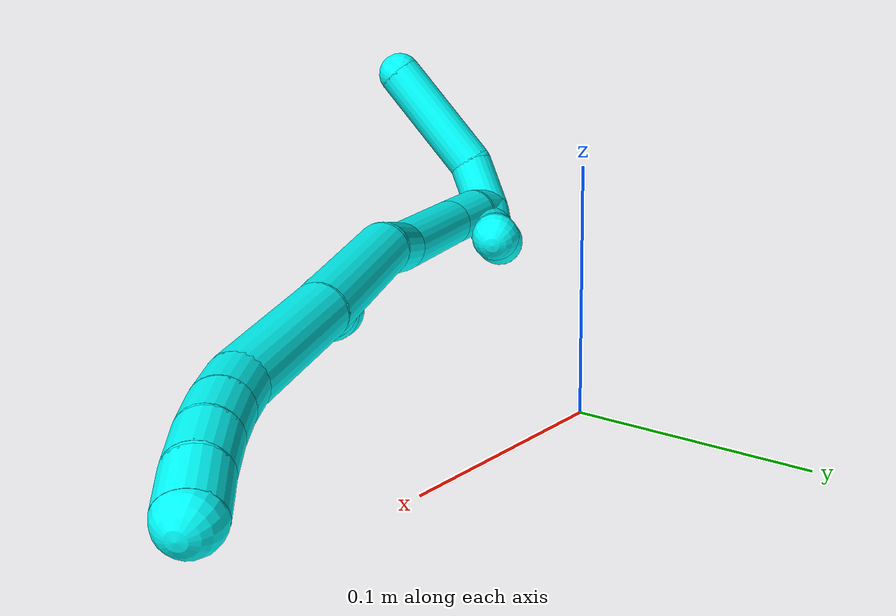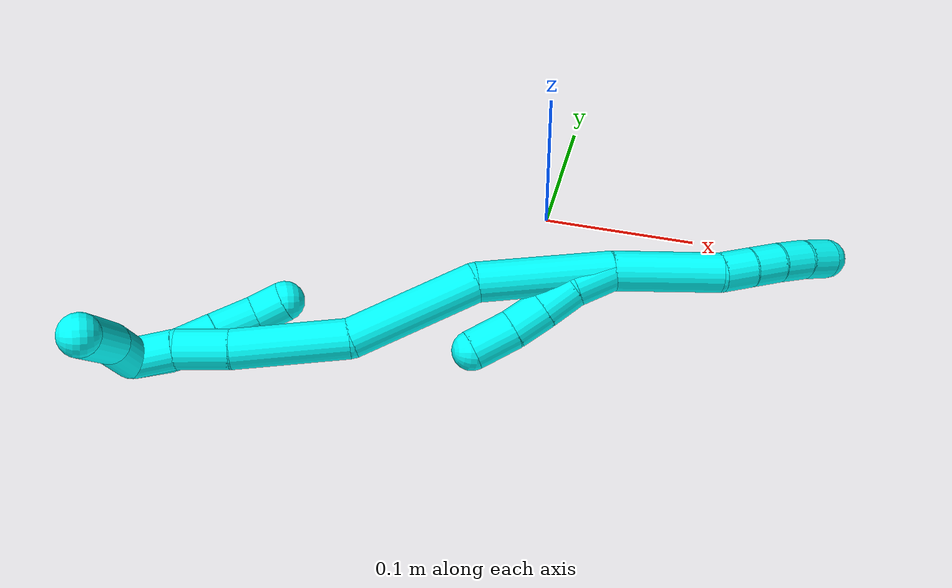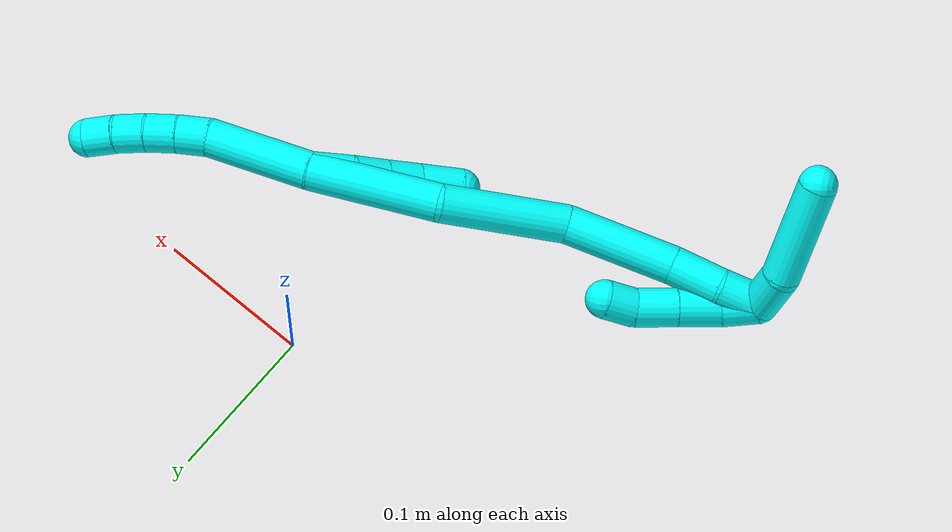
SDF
<sdf version="1.7">
 <world name="default">
  <model name="photoneo_s_sensor">
   <static>1</static>
   <pose>0 0 2 1.57079 1.57079 3.14159</pose>
   <link name="link">
    <inertial><mass>0.1</mass></inertial>
    <sensor name="sensor" type="depth">
     <update_rate>30</update_rate>
     <camera>
      <horizontal_fov>1.22</horizontal_fov>
      <image><width>1920</width><height>1200</height><format>B8G8R8</format></image>
      <clip><near>0.1</near><far>4</far></clip>
      <depth_camera><output>points</output></depth_camera>
     </camera>
     <plugin name="camera_plugin" filename="libgazebo_ros_depth_camera.so">
      <baseline>0.2</baseline>
      <alwaysOn>1</alwaysOn>
      <updateRate>0.0</updateRate>
      <cameraName>camera_ir</cameraName>
      <imageTopicName>/camera/color/image_raw</imageTopicName>
      <cameraInfoTopicName>/camera/color/camera_info</cameraInfoTopicName>
      <depthImageTopicName>/camera/depth/image_raw</depthImageTopicName>
      <depthImageCameraInfoTopicName>/camera/depth/camera_info</depthImageCameraInfoTopicName>
      <pointCloudTopicName>/camera/depth/points</pointCloudTopicName>
      <frameName>fr_optical</frameName>
      <pointCloudCutoff>0.1</pointCloudCutoff>
      <pointCloudCutoffMax>2.0</pointCloudCutoffMax>
      <distortionK1>0</distortionK1>
      <distortionK2>0</distortionK2>
      <distortionK3>0</distortionK3>
      <distortionT1>0</distortionT1>
      <distortionT2>0</distortionT2>
      <CxPrime>0</CxPrime>
      <Cx>0</Cx>
      <Cy>0</Cy>
      <focalLength>0</focalLength>
      <hackBaseline>0</hackBaseline>
     </plugin>
    </sensor>
   </link>
  </model>
  <model name="bin">
   <static>1</static>
   <link name="bottom">
    <collision name="collision-bottom">
     <pose>0 0 -0.01 0 -0 0</pose>
     <geometry><box><size>0.8 0.6 0.02</size></box></geometry>
     <surface>
      <friction><ode><mu>100</mu><mu2>100</mu2></ode></friction>
      <contact><collide_bitmask>65535</collide_bitmask></contact>
     </surface>
    </collision>
   </link>
   <link name="west_wall">
    <collision name="collision-west_wall">
     <pose>-0.41 0 0.1 0 -0 0</pose>
     <geometry><box><size>0.02 0.6 0.2</size></box></geometry>
     <surface>
      <friction><ode><mu>100</mu><mu2>100</mu2></ode></friction>
      <contact><collide_bitmask>65535</collide_bitmask></contact>
     </surface>
    </collision>
   </link>
   <link name="east_wall">
    <collision name="collision-east_wall">
     <pose>0.41 0 0.1 0 -0 0</pose>
     <geometry><box><size>0.02 0.6 0.2</size></box></geometry>
     <surface>
      <friction><ode><mu>100</mu><mu2>100</mu2></ode></friction>
      <contact><collide_bitmask>65535</collide_bitmask></contact>
     </surface>
    </collision>
   </link>
   <link name="south_wall">
    <collision name="collision-south_wall">
     <pose>0 -0.31 0.1 0 -0 0</pose>
     <geometry><box><size>0.8 0.02 0.2</size></box></geometry>
     <surface>
      <friction><ode><mu>100</mu><mu2>100</mu2></ode></friction>
      <contact><collide_bitmask>65535</collide_bitmask></contact>
     </surface>
    </collision>
   </link>
   <link name="north_wall">
    <collision name="collision-north_wall">
     <pose>0 0.31 0.1 0 -0 0</pose>
     <geometry><box><size>0.8 0.02 0.2</size></box></geometry>
     <surface>
      <friction><ode><mu>100</mu><mu2>100</mu2></ode></friction>
      <contact><collide_bitmask>65535</collide_bitmask></contact>
     </surface>
    </collision>
   </link>
  </model>
  <model name="3">
   <static>0</static>
   <link name="3">
    <collision name="collision-cylinder-e_1_2_8">
     <pose>-0.005888 0.001548 -0.034002 -3.0961 -0.171305 2.62352</pose>
     <geometry><cylinder><radius>0.0125</radius><length>0.069085</length></cylinder></geometry>
     <surface>
      <friction><ode><mu>1.16</mu><mu2>1.16</mu2><slip1>0</slip1><slip2>0</slip2></ode></friction>
      <contact><ode><kp>1e+06</kp><kd>1</kd><max_vel>0</max_vel><min_depth>0.001</min_depth></ode></contact>
     </surface>
    </collision>
    <visual name="visual-cylinder-e_1_2_8">
     <pose>-0.005888 0.001548 -0.034002 -3.0961 -0.171305 2.62352</pose>
     <geometry><cylinder><radius>0.0125</radius><length>0.069085</length></cylinder></geometry>
     <material><ambient>0.003922 1 0.996078 1</ambient></material>
    </visual>
    <collision name="collision-cylinder-e_2_8_9">
     <pose>-0.011831 0.001871 -0.078346 3.02365 -0.005246 -0.088797</pose>
     <geometry><cylinder><radius>0.0125</radius><length>0.020829</length></cylinder></geometry>
     <surface>
      <friction><ode><mu>1.16</mu><mu2>1.16</mu2><slip1>0</slip1><slip2>0</slip2></ode></friction>
      <contact><ode><kp>1e+06</kp><kd>1</kd><max_vel>0</max_vel><min_depth>0.001</min_depth></ode></contact>
     </surface>
    </collision>
    <visual name="visual-cylinder-e_2_8_9">
     <pose>-0.011831 0.001871 -0.078346 3.02365 -0.005246 -0.088797</pose>
     <geometry><cylinder><radius>0.0125</radius><length>0.020829</length></cylinder></geometry>
     <material><ambient>0.003922 1 0.996078 1</ambient></material>
    </visual>
    <collision name="collision-cylinder-e_3_9_10">
     <pose>-0.011177 -0.000408 -0.098613 3.03589 0.070887 1.18099</pose>
     <geometry><cylinder><radius>0.0125</radius><length>0.020012</length></cylinder></geometry>
     <surface>
      <friction><ode><mu>1.16</mu><mu2>1.16</mu2><slip1>0</slip1><slip2>0</slip2></ode></friction>
      <contact><ode><kp>1e+06</kp><kd>1</kd><max_vel>0</max_vel><min_depth>0.001</min_depth></ode></contact>
     </surface>
    </collision>
    <visual name="visual-cylinder-e_3_9_10">
     <pose>-0.011177 -0.000408 -0.098613 3.03589 0.070887 1.18099</pose>
     <geometry><cylinder><radius>0.0125</radius><length>0.020012</length></cylinder></geometry>
     <material><ambient>0.003922 1 0.996078 1</ambient></material>
    </visual>
    <collision name="collision-cylinder-e_4_10_11">
     <pose>-0.008862 -0.002008 -0.118421 3.08625 0.160909 2.48029</pose>
     <geometry><cylinder><radius>0.0125</radius><length>0.020054</length></cylinder></geometry>
     <surface>
      <friction><ode><mu>1.16</mu><mu2>1.16</mu2><slip1>0</slip1><slip2>0</slip2></ode></friction>
      <contact><ode><kp>1e+06</kp><kd>1</kd><max_vel>0</max_vel><min_depth>0.001</min_depth></ode></contact>
     </surface>
    </collision>
    <visual name="visual-cylinder-e_4_10_11">
     <pose>-0.008862 -0.002008 -0.118421 3.08625 0.160909 2.48029</pose>
     <geometry><cylinder><radius>0.0125</radius><length>0.020054</length></cylinder></geometry>
     <material><ambient>0.003922 1 0.996078 1</ambient></material>
    </visual>
    <collision name="collision-cylinder-e_5_11_6">
     <pose>-0.004632 -0.002331 -0.13796 -3.11831 0.265241 -2.96751</pose>
     <geometry><cylinder><radius>0.0125</radius><length>0.020019</length></cylinder></geometry>
     <surface>
      <friction><ode><mu>1.16</mu><mu2>1.16</mu2><slip1>0</slip1><slip2>0</slip2></ode></friction>
      <contact><ode><kp>1e+06</kp><kd>1</kd><max_vel>0</max_vel><min_depth>0.001</min_depth></ode></contact>
     </surface>
    </collision>
    <visual name="visual-cylinder-e_5_11_6">
     <pose>-0.004632 -0.002331 -0.13796 -3.11831 0.265241 -2.96751</pose>
     <geometry><cylinder><radius>0.0125</radius><length>0.020019</length></cylinder></geometry>
     <material><ambient>0.003922 1 0.996078 1</ambient></material>
    </visual>
    <collision name="collision-cylinder-e_1_2_12">
     <pose>0.000732 0.004669 0.012566 -0.355726 0.05457 -0.009812</pose>
     <geometry><cylinder><radius>0.0125</radius><length>0.02685</length></cylinder></geometry>
     <surface>
      <friction><ode><mu>1.16</mu><mu2>1.16</mu2><slip1>0</slip1><slip2>0</slip2></ode></friction>
      <contact><ode><kp>1e+06</kp><kd>1</kd><max_vel>0</max_vel><min_depth>0.001</min_depth></ode></contact>
     </surface>
    </collision>
    <visual name="visual-cylinder-e_1_2_12">
     <pose>0.000732 0.004669 0.012566 -0.355726 0.05457 -0.009812</pose>
     <geometry><cylinder><radius>0.0125</radius><length>0.02685</length></cylinder></geometry>
     <material><ambient>0.003922 1 0.996078 1</ambient></material>
    </visual>
    <collision name="collision-cylinder-e_2_12_13">
     <pose>0.003198 0.015707 0.034273 -0.608622 0.154389 -0.048575</pose>
     <geometry><cylinder><radius>0.0125</radius><length>0.02255</length></cylinder></geometry>
     <surface>
      <friction><ode><mu>1.16</mu><mu2>1.16</mu2><slip1>0</slip1><slip2>0</slip2></ode></friction>
      <contact><ode><kp>1e+06</kp><kd>1</kd><max_vel>0</max_vel><min_depth>0.001</min_depth></ode></contact>
     </surface>
    </collision>
    <visual name="visual-cylinder-e_2_12_13">
     <pose>0.003198 0.015707 0.034273 -0.608622 0.154389 -0.048575</pose>
     <geometry><cylinder><radius>0.0125</radius><length>0.02255</length></cylinder></geometry>
     <material><ambient>0.003922 1 0.996078 1</ambient></material>
    </visual>
    <collision name="collision-cylinder-e_3_13_14">
     <pose>0.006429 0.028016 0.052884 -0.560093 0.133097 -0.038331</pose>
     <geometry><cylinder><radius>0.0125</radius><length>0.022557</length></cylinder></geometry>
     <surface>
      <friction><ode><mu>1.16</mu><mu2>1.16</mu2><slip1>0</slip1><slip2>0</slip2></ode></friction>
      <contact><ode><kp>1e+06</kp><kd>1</kd><max_vel>0</max_vel><min_depth>0.001</min_depth></ode></contact>
     </surface>
    </collision>
    <visual name="visual-cylinder-e_3_13_14">
     <pose>0.006429 0.028016 0.052884 -0.560093 0.133097 -0.038331</pose>
     <geometry><cylinder><radius>0.0125</radius><length>0.022557</length></cylinder></geometry>
     <material><ambient>0.003922 1 0.996078 1</ambient></material>
    </visual>
    <collision name="collision-cylinder-e_4_14_5">
     <pose>0.009424 0.039898 0.074965 -0.440404 0.107033 -0.023979</pose>
     <geometry><cylinder><radius>0.0125</radius><length>0.028042</length></cylinder></geometry>
     <surface>
      <friction><ode><mu>1.16</mu><mu2>1.16</mu2><slip1>0</slip1><slip2>0</slip2></ode></friction>
      <contact><ode><kp>1e+06</kp><kd>1</kd><max_vel>0</max_vel><min_depth>0.001</min_depth></ode></contact>
     </surface>
    </collision>
    <visual name="visual-cylinder-e_4_14_5">
     <pose>0.009424 0.039898 0.074965 -0.440404 0.107033 -0.023979</pose>
     <geometry><cylinder><radius>0.0125</radius><length>0.028042</length></cylinder></geometry>
     <material><ambient>0.003922 1 0.996078 1</ambient></material>
    </visual>
    <collision name="collision-cylinder-e_1_2_15">
     <pose>0.005218 0.002141 0.042361 -0.050498 0.122411 -0.003095</pose>
     <geometry><cylinder><radius>0.0125</radius><length>0.085469</length></cylinder></geometry>
     <surface>
      <friction><ode><mu>1.16</mu><mu2>1.16</mu2><slip1>0</slip1><slip2>0</slip2></ode></friction>
      <contact><ode><kp>1e+06</kp><kd>1</kd><max_vel>0</max_vel><min_depth>0.001</min_depth></ode></contact>
     </surface>
    </collision>
    <visual name="visual-cylinder-e_1_2_15">
     <pose>0.005218 0.002141 0.042361 -0.050498 0.122411 -0.003095</pose>
     <geometry><cylinder><radius>0.0125</radius><length>0.085469</length></cylinder></geometry>
     <material><ambient>0.003922 1 0.996078 1</ambient></material>
    </visual>
    <collision name="collision-cylinder-e_2_15_16">
     <pose>0.016171 0.020066 0.122619 -0.394642 0.138801 -0.027792</pose>
     <geometry><cylinder><radius>0.0125</radius><length>0.082902</length></cylinder></geometry>
     <surface>
      <friction><ode><mu>1.16</mu><mu2>1.16</mu2><slip1>0</slip1><slip2>0</slip2></ode></friction>
      <contact><ode><kp>1e+06</kp><kd>1</kd><max_vel>0</max_vel><min_depth>0.001</min_depth></ode></contact>
     </surface>
    </collision>
    <visual name="visual-cylinder-e_2_15_16">
     <pose>0.016171 0.020066 0.122619 -0.394642 0.138801 -0.027792</pose>
     <geometry><cylinder><radius>0.0125</radius><length>0.082902</length></cylinder></geometry>
     <material><ambient>0.003922 1 0.996078 1</ambient></material>
    </visual>
    <collision name="collision-cylinder-e_3_16_17">
     <pose>0.031236 0.038259 0.195177 -0.069414 0.262317 -0.00916</pose>
     <geometry><cylinder><radius>0.0125</radius><length>0.071952</length></cylinder></geometry>
     <surface>
      <friction><ode><mu>1.16</mu><mu2>1.16</mu2><slip1>0</slip1><slip2>0</slip2></ode></friction>
      <contact><ode><kp>1e+06</kp><kd>1</kd><max_vel>0</max_vel><min_depth>0.001</min_depth></ode></contact>
     </surface>
    </collision>
    <visual name="visual-cylinder-e_3_16_17">
     <pose>0.031236 0.038259 0.195177 -0.069414 0.262317 -0.00916</pose>
     <geometry><cylinder><radius>0.0125</radius><length>0.071952</length></cylinder></geometry>
     <material><ambient>0.003922 1 0.996078 1</ambient></material>
    </visual>
    <collision name="collision-cylinder-e_4_17_18">
     <pose>0.045554 0.040424 0.245515 0.01567 0.308085 0.002433</pose>
     <geometry><cylinder><radius>0.0125</radius><length>0.032907</length></cylinder></geometry>
     <surface>
      <friction><ode><mu>1.16</mu><mu2>1.16</mu2><slip1>0</slip1><slip2>0</slip2></ode></friction>
      <contact><ode><kp>1e+06</kp><kd>1</kd><max_vel>0</max_vel><min_depth>0.001</min_depth></ode></contact>
     </surface>
    </collision>
    <visual name="visual-cylinder-e_4_17_18">
     <pose>0.045554 0.040424 0.245515 0.01567 0.308085 0.002433</pose>
     <geometry><cylinder><radius>0.0125</radius><length>0.032907</length></cylinder></geometry>
     <material><ambient>0.003922 1 0.996078 1</ambient></material>
    </visual>
    <collision name="collision-cylinder-e_5_18_1">
     <pose>0.054952 0.042717 0.273573 -0.202249 0.335634 -0.034377</pose>
     <geometry><cylinder><radius>0.0125</radius><length>0.02677</length></cylinder></geometry>
     <surface>
      <friction><ode><mu>1.16</mu><mu2>1.16</mu2><slip1>0</slip1><slip2>0</slip2></ode></friction>
      <contact><ode><kp>1e+06</kp><kd>1</kd><max_vel>0</max_vel><min_depth>0.001</min_depth></ode></contact>
     </surface>
    </collision>
    <visual name="visual-cylinder-e_5_18_1">
     <pose>0.054952 0.042717 0.273573 -0.202249 0.335634 -0.034377</pose>
     <geometry><cylinder><radius>0.0125</radius><length>0.02677</length></cylinder></geometry>
     <material><ambient>0.003922 1 0.996078 1</ambient></material>
    </visual>
    <collision name="collision-cylinder-e_1_1_19">
     <pose>0.061861 0.044295 0.274374 3.05889 0.212007 2.39987</pose>
     <geometry><cylinder><radius>0.0125</radius><length>0.023769</length></cylinder></geometry>
     <surface>
      <friction><ode><mu>1.16</mu><mu2>1.16</mu2><slip1>0</slip1><slip2>0</slip2></ode></friction>
      <contact><ode><kp>1e+06</kp><kd>1</kd><max_vel>0</max_vel><min_depth>0.001</min_depth></ode></contact>
     </surface>
    </collision>
    <visual name="visual-cylinder-e_1_1_19">
     <pose>0.061861 0.044295 0.274374 3.05889 0.212007 2.39987</pose>
     <geometry><cylinder><radius>0.0125</radius><length>0.023769</length></cylinder></geometry>
     <material><ambient>0.003922 1 0.996078 1</ambient></material>
    </visual>
    <collision name="collision-cylinder-e_2_19_20">
     <pose>0.064855 0.038215 0.24941 2.77622 0.034368 0.185509</pose>
     <geometry><cylinder><radius>0.0125</radius><length>0.02868</length></cylinder></geometry>
     <surface>
      <friction><ode><mu>1.16</mu><mu2>1.16</mu2><slip1>0</slip1><slip2>0</slip2></ode></friction>
      <contact><ode><kp>1e+06</kp><kd>1</kd><max_vel>0</max_vel><min_depth>0.001</min_depth></ode></contact>
     </surface>
    </collision>
    <visual name="visual-cylinder-e_2_19_20">
     <pose>0.064855 0.038215 0.24941 2.77622 0.034368 0.185509</pose>
     <geometry><cylinder><radius>0.0125</radius><length>0.02868</length></cylinder></geometry>
     <material><ambient>0.003922 1 0.996078 1</ambient></material>
    </visual>
    <collision name="collision-cylinder-e_3_20_21">
     <pose>0.065969 0.028385 0.223134 2.79135 0.045273 0.254535</pose>
     <geometry><cylinder><radius>0.0125</radius><length>0.027476</length></cylinder></geometry>
     <surface>
      <friction><ode><mu>1.16</mu><mu2>1.16</mu2><slip1>0</slip1><slip2>0</slip2></ode></friction>
      <contact><ode><kp>1e+06</kp><kd>1</kd><max_vel>0</max_vel><min_depth>0.001</min_depth></ode></contact>
     </surface>
    </collision>
    <visual name="visual-cylinder-e_3_20_21">
     <pose>0.065969 0.028385 0.223134 2.79135 0.045273 0.254535</pose>
     <geometry><cylinder><radius>0.0125</radius><length>0.027476</length></cylinder></geometry>
     <material><ambient>0.003922 1 0.996078 1</ambient></material>
    </visual>
    <collision name="collision-cylinder-e_4_21_4">
     <pose>0.063822 0.019381 0.201603 2.68024 -0.279439 -1.07908</pose>
     <geometry><cylinder><radius>0.0125</radius><length>0.020074</length></cylinder></geometry>
     <surface>
      <friction><ode><mu>1.16</mu><mu2>1.16</mu2><slip1>0</slip1><slip2>0</slip2></ode></friction>
      <contact><ode><kp>1e+06</kp><kd>1</kd><max_vel>0</max_vel><min_depth>0.001</min_depth></ode></contact>
     </surface>
    </collision>
    <visual name="visual-cylinder-e_4_21_4">
     <pose>0.063822 0.019381 0.201603 2.68024 -0.279439 -1.07908</pose>
     <geometry><cylinder><radius>0.0125</radius><length>0.020074</length></cylinder></geometry>
     <material><ambient>0.003922 1 0.996078 1</ambient></material>
    </visual>
    <collision name="collision-cylinder-e_1_1_22">
     <pose>0.047252 0.038933 0.293043 0.728231 -0.905539 -0.366637</pose>
     <geometry><cylinder><radius>0.0125</radius><length>0.030779</length></cylinder></geometry>
     <surface>
      <friction><ode><mu>1.16</mu><mu2>1.16</mu2><slip1>0</slip1><slip2>0</slip2></ode></friction>
      <contact><ode><kp>1e+06</kp><kd>1</kd><max_vel>0</max_vel><min_depth>0.001</min_depth></ode></contact>
     </surface>
    </collision>
    <visual name="visual-cylinder-e_1_1_22">
     <pose>0.047252 0.038933 0.293043 0.728231 -0.905539 -0.366637</pose>
     <geometry><cylinder><radius>0.0125</radius><length>0.030779</length></cylinder></geometry>
     <material><ambient>0.003922 1 0.996078 1</ambient></material>
    </visual>
    <collision name="collision-cylinder-e_2_22_3">
     <pose>0.002532 0.026218 0.3098 0.584226 -1.22935 -0.418341</pose>
     <geometry><cylinder><radius>0.0125</radius><length>0.069221</length></cylinder></geometry>
     <surface>
      <friction><ode><mu>1.16</mu><mu2>1.16</mu2><slip1>0</slip1><slip2>0</slip2></ode></friction>
      <contact><ode><kp>1e+06</kp><kd>1</kd><max_vel>0</max_vel><min_depth>0.001</min_depth></ode></contact>
     </surface>
    </collision>
    <visual name="visual-cylinder-e_2_22_3">
     <pose>0.002532 0.026218 0.3098 0.584226 -1.22935 -0.418341</pose>
     <geometry><cylinder><radius>0.0125</radius><length>0.069221</length></cylinder></geometry>
     <material><ambient>0.003922 1 0.996078 1</ambient></material>
    </visual>
    <collision name="collision-sphere-3">
     <pose>-0.03008 0.019826 0.319467 0 -0 0</pose>
     <geometry><sphere><radius>0.0125</radius></sphere></geometry>
     <surface>
      <friction><ode><mu>1.16</mu><mu2>1.16</mu2><slip1>0</slip1><slip2>0</slip2></ode></friction>
      <contact><ode><kp>1e+06</kp><kd>1</kd><max_vel>0</max_vel><min_depth>0.001</min_depth></ode></contact>
     </surface>
    </collision>
    <visual name="visual-sphere-3">
     <pose>-0.03008 0.019826 0.319467 0 -0 0</pose>
     <geometry><sphere><radius>0.0125</radius></sphere></geometry>
     <material><ambient>0.003922 1 0.996078 1</ambient></material>
    </visual>
    <collision name="collision-sphere-22">
     <pose>0.035144 0.032611 0.300133 0 -0 0</pose>
     <geometry><sphere><radius>0.0125</radius></sphere></geometry>
     <surface>
      <friction><ode><mu>1.16</mu><mu2>1.16</mu2><slip1>0</slip1><slip2>0</slip2></ode></friction>
      <contact><ode><kp>1e+06</kp><kd>1</kd><max_vel>0</max_vel><min_depth>0.001</min_depth></ode></contact>
     </surface>
    </collision>
    <visual name="visual-sphere-22">
     <pose>0.035144 0.032611 0.300133 0 -0 0</pose>
     <geometry><sphere><radius>0.0125</radius></sphere></geometry>
     <material><ambient>0.003922 1 0.996078 1</ambient></material>
    </visual>
    <collision name="collision-sphere-4">
     <pose>0.061054 0.015086 0.192964 0 -0 0</pose>
     <geometry><sphere><radius>0.0125</radius></sphere></geometry>
     <surface>
      <friction><ode><mu>1.16</mu><mu2>1.16</mu2><slip1>0</slip1><slip2>0</slip2></ode></friction>
      <contact><ode><kp>1e+06</kp><kd>1</kd><max_vel>0</max_vel><min_depth>0.001</min_depth></ode></contact>
     </surface>
    </collision>
    <visual name="visual-sphere-4">
     <pose>0.061054 0.015086 0.192964 0 -0 0</pose>
     <geometry><sphere><radius>0.0125</radius></sphere></geometry>
     <material><ambient>0.003922 1 0.996078 1</ambient></material>
    </visual>
    <collision name="collision-sphere-21">
     <pose>0.066591 0.023676 0.210243 0 -0 0</pose>
     <geometry><sphere><radius>0.0125</radius></sphere></geometry>
     <surface>
      <friction><ode><mu>1.16</mu><mu2>1.16</mu2><slip1>0</slip1><slip2>0</slip2></ode></friction>
      <contact><ode><kp>1e+06</kp><kd>1</kd><max_vel>0</max_vel><min_depth>0.001</min_depth></ode></contact>
     </surface>
    </collision>
    <visual name="visual-sphere-21">
     <pose>0.066591 0.023676 0.210243 0 -0 0</pose>
     <geometry><sphere><radius>0.0125</radius></sphere></geometry>
     <material><ambient>0.003922 1 0.996078 1</ambient></material>
    </visual>
    <collision name="collision-sphere-20">
     <pose>0.065347 0.033094 0.236025 0 -0 0</pose>
     <geometry><sphere><radius>0.0125</radius></sphere></geometry>
     <surface>
      <friction><ode><mu>1.16</mu><mu2>1.16</mu2><slip1>0</slip1><slip2>0</slip2></ode></friction>
      <contact><ode><kp>1e+06</kp><kd>1</kd><max_vel>0</max_vel><min_depth>0.001</min_depth></ode></contact>
     </surface>
    </collision>
    <visual name="visual-sphere-20">
     <pose>0.065347 0.033094 0.236025 0 -0 0</pose>
     <geometry><sphere><radius>0.0125</radius></sphere></geometry>
     <material><ambient>0.003922 1 0.996078 1</ambient></material>
    </visual>
    <collision name="collision-sphere-6">
     <pose>-0.002008 -0.002106 -0.147617 0 -0 0</pose>
     <geometry><sphere><radius>0.0125</radius></sphere></geometry>
     <surface>
      <friction><ode><mu>1.16</mu><mu2>1.16</mu2><slip1>0</slip1><slip2>0</slip2></ode></friction>
      <contact><ode><kp>1e+06</kp><kd>1</kd><max_vel>0</max_vel><min_depth>0.001</min_depth></ode></contact>
     </surface>
    </collision>
    <visual name="visual-sphere-6">
     <pose>-0.002008 -0.002106 -0.147617 0 -0 0</pose>
     <geometry><sphere><radius>0.0125</radius></sphere></geometry>
     <material><ambient>0.003922 1 0.996078 1</ambient></material>
    </visual>
    <collision name="collision-sphere-11">
     <pose>-0.007256 -0.002556 -0.128304 0 -0 0</pose>
     <geometry><sphere><radius>0.0125</radius></sphere></geometry>
     <surface>
      <friction><ode><mu>1.16</mu><mu2>1.16</mu2><slip1>0</slip1><slip2>0</slip2></ode></friction>
      <contact><ode><kp>1e+06</kp><kd>1</kd><max_vel>0</max_vel><min_depth>0.001</min_depth></ode></contact>
     </surface>
    </collision>
    <visual name="visual-sphere-11">
     <pose>-0.007256 -0.002556 -0.128304 0 -0 0</pose>
     <geometry><sphere><radius>0.0125</radius></sphere></geometry>
     <material><ambient>0.003922 1 0.996078 1</ambient></material>
    </visual>
    <collision name="collision-sphere-10">
     <pose>-0.010469 -0.001461 -0.108539 0 -0 0</pose>
     <geometry><sphere><radius>0.0125</radius></sphere></geometry>
     <surface>
      <friction><ode><mu>1.16</mu><mu2>1.16</mu2><slip1>0</slip1><slip2>0</slip2></ode></friction>
      <contact><ode><kp>1e+06</kp><kd>1</kd><max_vel>0</max_vel><min_depth>0.001</min_depth></ode></contact>
     </surface>
    </collision>
    <visual name="visual-sphere-10">
     <pose>-0.010469 -0.001461 -0.108539 0 -0 0</pose>
     <geometry><sphere><radius>0.0125</radius></sphere></geometry>
     <material><ambient>0.003922 1 0.996078 1</ambient></material>
    </visual>
    <collision name="collision-sphere-9">
     <pose>-0.011886 0.000645 -0.088688 0 -0 0</pose>
     <geometry><sphere><radius>0.0125</radius></sphere></geometry>
     <surface>
      <friction><ode><mu>1.16</mu><mu2>1.16</mu2><slip1>0</slip1><slip2>0</slip2></ode></friction>
      <contact><ode><kp>1e+06</kp><kd>1</kd><max_vel>0</max_vel><min_depth>0.001</min_depth></ode></contact>
     </surface>
    </collision>
    <visual name="visual-sphere-9">
     <pose>-0.011886 0.000645 -0.088688 0 -0 0</pose>
     <geometry><sphere><radius>0.0125</radius></sphere></geometry>
     <material><ambient>0.003922 1 0.996078 1</ambient></material>
    </visual>
    <collision name="collision-sphere-2">
     <geometry><sphere><radius>0.0125</radius></sphere></geometry>
     <surface>
      <friction><ode><mu>1.16</mu><mu2>1.16</mu2><slip1>0</slip1><slip2>0</slip2></ode></friction>
      <contact><ode><kp>1e+06</kp><kd>1</kd><max_vel>0</max_vel><min_depth>0.001</min_depth></ode></contact>
     </surface>
    </collision>
    <visual name="visual-sphere-2">
     <geometry><sphere><radius>0.0125</radius></sphere></geometry>
     <material><ambient>0.003922 1 0.996078 1</ambient></material>
    </visual>
    <collision name="collision-sphere-19">
     <pose>0.064362 0.043336 0.262795 0 -0 0</pose>
     <geometry><sphere><radius>0.0125</radius></sphere></geometry>
     <surface>
      <friction><ode><mu>1.16</mu><mu2>1.16</mu2><slip1>0</slip1><slip2>0</slip2></ode></friction>
      <contact><ode><kp>1e+06</kp><kd>1</kd><max_vel>0</max_vel><min_depth>0.001</min_depth></ode></contact>
     </surface>
    </collision>
    <visual name="visual-sphere-19">
     <pose>0.064362 0.043336 0.262795 0 -0 0</pose>
     <geometry><sphere><radius>0.0125</radius></sphere></geometry>
     <material><ambient>0.003922 1 0.996078 1</ambient></material>
    </visual>
    <collision name="collision-sphere-8">
     <pose>-0.011777 0.003096 -0.068004 0 -0 0</pose>
     <geometry><sphere><radius>0.0125</radius></sphere></geometry>
     <surface>
      <friction><ode><mu>1.16</mu><mu2>1.16</mu2><slip1>0</slip1><slip2>0</slip2></ode></friction>
      <contact><ode><kp>1e+06</kp><kd>1</kd><max_vel>0</max_vel><min_depth>0.001</min_depth></ode></contact>
     </surface>
    </collision>
    <visual name="visual-sphere-8">
     <pose>-0.011777 0.003096 -0.068004 0 -0 0</pose>
     <geometry><sphere><radius>0.0125</radius></sphere></geometry>
     <material><ambient>0.003922 1 0.996078 1</ambient></material>
    </visual>
    <collision name="collision-sphere-12">
     <pose>0.001464 0.009337 0.025132 0 -0 0</pose>
     <geometry><sphere><radius>0.0125</radius></sphere></geometry>
     <surface>
      <friction><ode><mu>1.16</mu><mu2>1.16</mu2><slip1>0</slip1><slip2>0</slip2></ode></friction>
      <contact><ode><kp>1e+06</kp><kd>1</kd><max_vel>0</max_vel><min_depth>0.001</min_depth></ode></contact>
     </surface>
    </collision>
    <visual name="visual-sphere-12">
     <pose>0.001464 0.009337 0.025132 0 -0 0</pose>
     <geometry><sphere><radius>0.0125</radius></sphere></geometry>
     <material><ambient>0.003922 1 0.996078 1</ambient></material>
    </visual>
    <collision name="collision-sphere-13">
     <pose>0.004932 0.022077 0.043413 0 -0 0</pose>
     <geometry><sphere><radius>0.0125</radius></sphere></geometry>
     <surface>
      <friction><ode><mu>1.16</mu><mu2>1.16</mu2><slip1>0</slip1><slip2>0</slip2></ode></friction>
      <contact><ode><kp>1e+06</kp><kd>1</kd><max_vel>0</max_vel><min_depth>0.001</min_depth></ode></contact>
     </surface>
    </collision>
    <visual name="visual-sphere-13">
     <pose>0.004932 0.022077 0.043413 0 -0 0</pose>
     <geometry><sphere><radius>0.0125</radius></sphere></geometry>
     <material><ambient>0.003922 1 0.996078 1</ambient></material>
    </visual>
    <collision name="collision-sphere-14">
     <pose>0.007926 0.033955 0.062355 0 -0 0</pose>
     <geometry><sphere><radius>0.0125</radius></sphere></geometry>
     <surface>
      <friction><ode><mu>1.16</mu><mu2>1.16</mu2><slip1>0</slip1><slip2>0</slip2></ode></friction>
      <contact><ode><kp>1e+06</kp><kd>1</kd><max_vel>0</max_vel><min_depth>0.001</min_depth></ode></contact>
     </surface>
    </collision>
    <visual name="visual-sphere-14">
     <pose>0.007926 0.033955 0.062355 0 -0 0</pose>
     <geometry><sphere><radius>0.0125</radius></sphere></geometry>
     <material><ambient>0.003922 1 0.996078 1</ambient></material>
    </visual>
    <collision name="collision-sphere-5">
     <pose>0.010921 0.045841 0.087576 0 -0 0</pose>
     <geometry><sphere><radius>0.0125</radius></sphere></geometry>
     <surface>
      <friction><ode><mu>1.16</mu><mu2>1.16</mu2><slip1>0</slip1><slip2>0</slip2></ode></friction>
      <contact><ode><kp>1e+06</kp><kd>1</kd><max_vel>0</max_vel><min_depth>0.001</min_depth></ode></contact>
     </surface>
    </collision>
    <visual name="visual-sphere-5">
     <pose>0.010921 0.045841 0.087576 0 -0 0</pose>
     <geometry><sphere><radius>0.0125</radius></sphere></geometry>
     <material><ambient>0.003922 1 0.996078 1</ambient></material>
    </visual>
    <collision name="collision-sphere-15">
     <pose>0.010436 0.004282 0.084722 0 -0 0</pose>
     <geometry><sphere><radius>0.0125</radius></sphere></geometry>
     <surface>
      <friction><ode><mu>1.16</mu><mu2>1.16</mu2><slip1>0</slip1><slip2>0</slip2></ode></friction>
      <contact><ode><kp>1e+06</kp><kd>1</kd><max_vel>0</max_vel><min_depth>0.001</min_depth></ode></contact>
     </surface>
    </collision>
    <visual name="visual-sphere-15">
     <pose>0.010436 0.004282 0.084722 0 -0 0</pose>
     <geometry><sphere><radius>0.0125</radius></sphere></geometry>
     <material><ambient>0.003922 1 0.996078 1</ambient></material>
    </visual>
    <collision name="collision-sphere-16">
     <pose>0.021906 0.03585 0.160516 0 -0 0</pose>
     <geometry><sphere><radius>0.0125</radius></sphere></geometry>
     <surface>
      <friction><ode><mu>1.16</mu><mu2>1.16</mu2><slip1>0</slip1><slip2>0</slip2></ode></friction>
      <contact><ode><kp>1e+06</kp><kd>1</kd><max_vel>0</max_vel><min_depth>0.001</min_depth></ode></contact>
     </surface>
    </collision>
    <visual name="visual-sphere-16">
     <pose>0.021906 0.03585 0.160516 0 -0 0</pose>
     <geometry><sphere><radius>0.0125</radius></sphere></geometry>
     <material><ambient>0.003922 1 0.996078 1</ambient></material>
    </visual>
    <collision name="collision-sphere-17">
     <pose>0.040565 0.040669 0.229839 0 -0 0</pose>
     <geometry><sphere><radius>0.0125</radius></sphere></geometry>
     <surface>
      <friction><ode><mu>1.16</mu><mu2>1.16</mu2><slip1>0</slip1><slip2>0</slip2></ode></friction>
      <contact><ode><kp>1e+06</kp><kd>1</kd><max_vel>0</max_vel><min_depth>0.001</min_depth></ode></contact>
     </surface>
    </collision>
    <visual name="visual-sphere-17">
     <pose>0.040565 0.040669 0.229839 0 -0 0</pose>
     <geometry><sphere><radius>0.0125</radius></sphere></geometry>
     <material><ambient>0.003922 1 0.996078 1</ambient></material>
    </visual>
    <collision name="collision-sphere-18">
     <pose>0.050543 0.040178 0.261192 0 -0 0</pose>
     <geometry><sphere><radius>0.0125</radius></sphere></geometry>
     <surface>
      <friction><ode><mu>1.16</mu><mu2>1.16</mu2><slip1>0</slip1><slip2>0</slip2></ode></friction>
      <contact><ode><kp>1e+06</kp><kd>1</kd><max_vel>0</max_vel><min_depth>0.001</min_depth></ode></contact>
     </surface>
    </collision>
    <visual name="visual-sphere-18">
     <pose>0.050543 0.040178 0.261192 0 -0 0</pose>
     <geometry><sphere><radius>0.0125</radius></sphere></geometry>
     <material><ambient>0.003922 1 0.996078 1</ambient></material>
    </visual>
    <collision name="collision-sphere-1">
     <pose>0.05936 0.045255 0.285953 0 -0 0</pose>
     <geometry><sphere><radius>0.0125</radius></sphere></geometry>
     <surface>
      <friction><ode><mu>1.16</mu><mu2>1.16</mu2><slip1>0</slip1><slip2>0</slip2></ode></friction>
      <contact><ode><kp>1e+06</kp><kd>1</kd><max_vel>0</max_vel><min_depth>0.001</min_depth></ode></contact>
     </surface>
    </collision>
    <visual name="visual-sphere-1">
     <pose>0.05936 0.045255 0.285953 0 -0 0</pose>
     <geometry><sphere><radius>0.0125</radius></sphere></geometry>
     <material><ambient>0.003922 1 0.996078 1</ambient></material>
    </visual>
    <inertial>
     <pose>0.019216 0.020914 0.121151 0 -0 0</pose>
     <mass>0.75</mass>
     <inertia><ixx>0.000153</ixx><ixy>0</ixy><ixz>0</ixz><iyy>0.00022</iyy><iyz>0</iyz><izz>3e-06</izz></inertia>
    </inertial>
   </link>
   <pose>0.057692 -0.085843 0.04052 -1.36694 0.62681 2.18324</pose>
  </model>
 </world>
</sdf>
